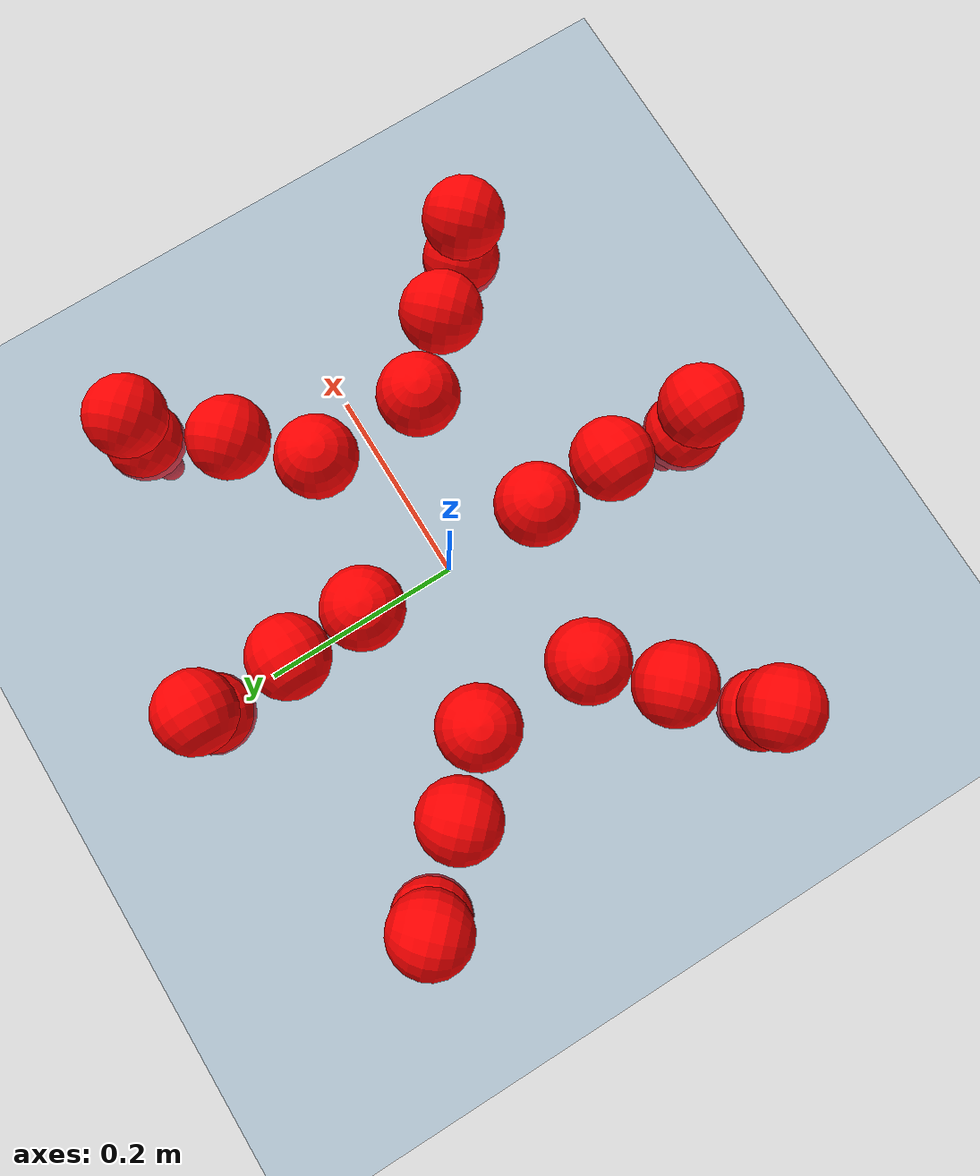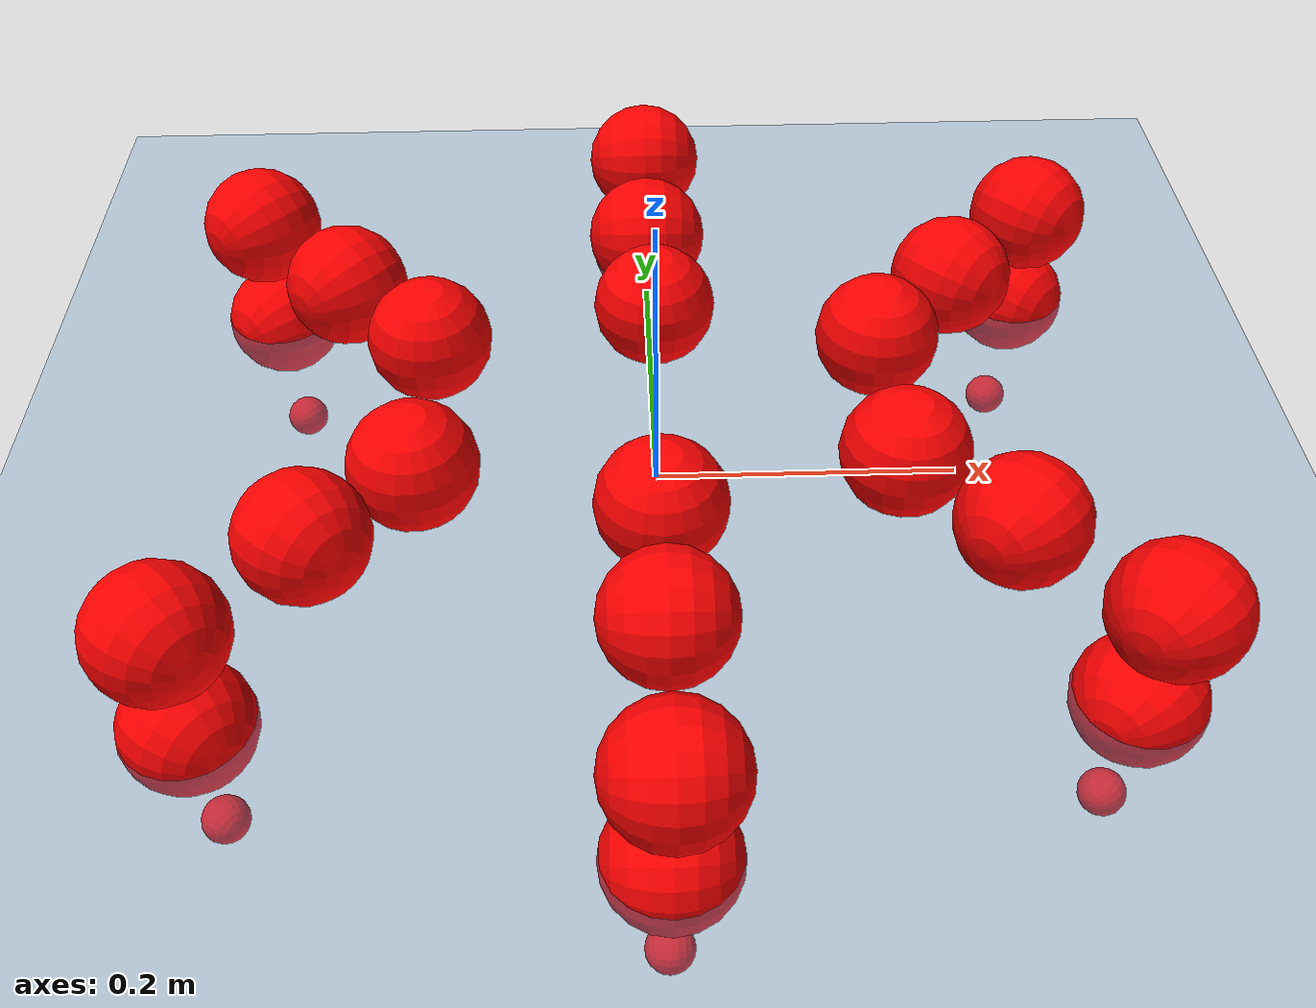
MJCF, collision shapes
<mujoco model="Golem">
  <compiler angle="radian" assetdir="assets" balanceinertia="true" inertiafromgeom="false"/>

  <option timestep="0.005" density="1.2" viscosity="2e-05"/>

  <size nkey="1"/>

  <visual>
    <quality shadowsize="8192"/>
    <map shadowclip="0.5"/>
  </visual>

  <default>
    <default class="/">
      <joint armature="0.01" damping="0.01" frictionloss="0.01"/>
      <geom contype="0" conaffinity="0" group="1" solref="-1000 -80"/>
      <site size="0.01 0.005 0.005" group="5"/>
      <general forcelimited="true" biastype="affine" gainprm="25" biasprm="0 -25 -0.5"/>
      <default class="visual">
        <geom type="mesh" group="2"/>
      </default>
      <default class="collision">
        <geom group="3"/>
      </default>
      <default class="foot">
        <geom size="0.01 0 0" condim="6" group="4" priority="1" solimp="0.015 1 0.01"/>
      </default>
      <default class="reward_collision_sphere">
        <geom group="5" rgba="1 0 0 1"/>
      </default>
    </default>
  </default>

  <asset>
    <texture type="skybox" colorspace="auto" name="//unnamed_texture_0" builtin="gradient" rgb1="0.95 0.95 0.95" rgb2="0.95 0.95 0.95" width="100" height="600"/>
    <texture type="2d" colorspace="auto" name="texplane" builtin="checker" rgb1="0.345 0.575 0.748" rgb2="0.345 0.575 0.748" markrgb="1 1 1" width="512" height="512"/>
    <material name="MatPlane" class="/" texture="texplane" texuniform="true" texrepeat="2 2" specular="0.9"/>
    <mesh name="body" class="/" file="body.stl" scale="0.001 0.001 0.001"/>
    <mesh name="coxa" class="/" file="coxa.stl" scale="0.001 0.001 0.001"/>
    <mesh name="femur" class="/" file="femur.stl" scale="0.001 0.001 0.001"/>
    <mesh name="tibia" class="/" file="tibia.stl" scale="0.001 0.001 0.001"/>
    <mesh name="tarsus" class="/" file="tarsus.stl" scale="0.001 0.001 0.001"/>
  </asset>

  <worldbody>
    <geom name="floor" class="/" size="100 100 0.125" type="plane" group="0" material="MatPlane"/>
    <light name="toplight_shadow" class="/" pos="0 0 5" dir="0.0990148 0.0990148 -0.990148" type="directional" ambient="0.04 0.04 0.04" diffuse="0.55 0.55 0.55" specular="0.12 0.12 0.12"/>
    <light name="toplight_fill" class="/" pos="0 0 5" dir="0.0990148 0.0990148 -0.990148" type="directional" castshadow="false" ambient="0.04 0.04 0.04" diffuse="0.3 0.3 0.3" specular="0.08 0.08 0.08"/>
    <body name="trunk" pos="0.000140199 -0.000200259 -0.00273547" quat="0.999999 -0.000490584 -0.000396424 0.000862556">
      <inertial pos="0.00297495 -0.00290589 -0.000272517" quat="0.999949 0.000519102 -0.00143025 -0.00999028" mass="3.65767" diaginertia="0.00694936 0.00622035 0.0230806"/>
      <joint name="//unnamed_joint_0" type="free"/>
      <geom name="//unnamed_geom_1" class="/" pos="0 0 0.075666" quat="1 0 0 0" type="mesh" rgba="0.9 0.9 0.9 1" mesh="body"/>
      <site name="imu" class="/" pos="0.114534 0.00986235 0.119808" size="0.0101366"/>
      <camera name="track" class="/" pos="0 -1.84443 0" quat="0.707107 0.707107 0 0" mode="trackcom"/>
      <camera name="ego_camera" class="/" pos="0.121742 0 0.118228" quat="-0.5 -0.5 0.5 0.5"/>
      <body name="coxa_RR" pos="-0.167575 -0.0771397 0.0770213" quat="0.382667 -3.69985e-07 8.11011e-06 -0.923886">
        <inertial pos="0.00235874 0.00197127 -0.00256827" quat="0.999914 0.00701243 0.0106727 -0.00298119" mass="0.208795" diaginertia="0.0069165 0.00666041 0.0225866"/>
        <joint name="coxa_joint_RR" class="/" pos="0 0 0" axis="-0.00628028 0.00114411 -0.99998" stiffness="0.00509853" range="-3.08723 3.10113" armature="0.0101759" damping="0" frictionloss="0.011322"/>
        <geom name="//unnamed_geom_2" class="/" type="mesh" rgba="0.2 0.2 0.2 1" mesh="coxa"/>
        <geom name="//unnamed_geom_3" class="reward_collision_sphere" size="0.0405463" pos="-0.0280944 0 0"/>
        <body name="femur_RR" pos="0.0529401 -0.00204156 -5.89726e-05" quat="0.499815 -0.499952 0.499848 0.500384">
          <inertial pos="8.36091e-05 0.000520498 0.00279689" quat="0.999904 0.0127895 0.00292253 0.00439701" mass="0.201607" diaginertia="0.00730471 0.00631314 0.0226801"/>
          <joint name="femur_joint_RR" class="/" pos="0 0 0" axis="-0.00123344 0.00198154 -0.999997" range="-3.09966 3.09846" armature="0.0110583" damping="0.0148734" frictionloss="0.010076"/>
          <geom name="//unnamed_geom_4" class="/" type="mesh" rgba="0.9 0.9 0.9 1" mesh="femur"/>
          <geom name="//unnamed_geom_5" class="reward_collision_sphere" size="0.0405463"/>
          <body name="tibia_RR" pos="-0.00253128 -0.0972216 0.00144388" quat="0.000189307 1 0.000224419 0.000149978">
            <inertial pos="-0.000187826 0.00110845 0.000345509" quat="1 0.000286252 -4.58143e-05 0.000434553" mass="0.203995" diaginertia="0.00706439 0.00650229 0.0226173"/>
            <joint name="tibia_joint_RR" class="/" pos="0 0 0" axis="-0.00412713 -0.00598012 0.999974" range="-3.11861 3.15277" armature="0.00857278" damping="0.0130846" frictionloss="0.0100779"/>
            <geom name="//unnamed_geom_6" class="/" type="mesh" rgba="0.2 0.2 0.2 1" mesh="tibia"/>
            <geom name="//unnamed_geom_7" class="reward_collision_sphere" size="0.0405463"/>
            <body name="tarsus_RR" pos="0.0817614 0.00232116 -0.000662077" quat="0.999999 0.000847645 0.001074 -0.000397717">
              <inertial pos="0.0592556 5.97389e-05 0.00262308" quat="0.502955 0.488855 0.507752 0.500244" mass="0.20471" diaginertia="0.0070856 0.00640648 0.0226273"/>
              <joint name="tarsus_joint_RR" class="/" pos="0 0 0" axis="-0.00330444 0.0137887 0.999899" range="-3.19617 3.15585" armature="0.00913931" damping="0.0171769" frictionloss="0.00997131"/>
              <geom name="//unnamed_geom_8" class="/" type="mesh" rgba="0.9 0.9 0.9 1" mesh="tarsus"/>
              <geom name="foot_1" class="foot" size="0.00941953" pos="0.104886 0 0" quat="0 -0.707107 0 0.707107"/>
              <geom name="//unnamed_geom_10" class="reward_collision_sphere" size="0.0405463"/>
              <geom name="//unnamed_geom_11" class="reward_collision_sphere" size="0.0152049" pos="0.100672 0 0"/>
              <site name="foot_1" class="foot" pos="0.104886 0 0" quat="0 -0.707107 0 0.707107" size="0.0101366"/>
            </body>
          </body>
        </body>
      </body>
      <body name="coxa_RM" pos="1.38178e-05 -0.123228 0.078357" quat="0.707246 0.000177289 0.000296617 -0.706968">
        <inertial pos="-0.000567982 0.000280997 -0.00182091" quat="0.999998 0.00066698 -0.00121117 0.00106052" mass="0.20168" diaginertia="0.00713302 0.00677159 0.0238516"/>
        <joint name="coxa_joint_RM" class="/" pos="0 0 0" axis="0.00054943 -0.001851 -0.999998" range="-3.1332 3.08185" armature="0.00934508" damping="0.0181183" frictionloss="0.0115101"/>
        <geom name="//unnamed_geom_12" class="/" type="mesh" rgba="0.2 0.2 0.2 1" mesh="coxa"/>
        <geom name="//unnamed_geom_13" class="reward_collision_sphere" size="0.0405463" pos="-0.0280944 0 0"/>
        <body name="femur_RM" pos="0.0558008 0.000392678 -0.00186677" quat="0.49988 -0.499843 0.500122 0.500155">
          <inertial pos="-0.000374782 0.00246802 -3.22817e-05" quat="1 -0.000627574 0.000525462 6.75893e-05" mass="0.217018" diaginertia="0.00708134 0.00678145 0.0224382"/>
          <joint name="femur_joint_RM" class="/" pos="0 0 0" axis="-0.00137078 0.000827378 -0.999999" range="-3.09777 3.19484" armature="0.0114601" damping="0.0210813" frictionloss="0.0109155"/>
          <geom name="//unnamed_geom_14" class="/" type="mesh" rgba="0.9 0.9 0.9 1" mesh="femur"/>
          <geom name="//unnamed_geom_15" class="reward_collision_sphere" size="0.0405463"/>
          <body name="tibia_RM" pos="6.80352e-05 -0.0994706 -0.000441382" quat="-0.000298543 1 -7.52989e-05 -0.000110041">
            <inertial pos="-0.00102025 0.000215169 0.00235454" quat="0.999995 -0.00020561 -0.00189279 0.00259309" mass="0.211025" diaginertia="0.00727446 0.00663851 0.0222664"/>
            <joint name="tibia_joint_RM" class="/" pos="0 0 0" axis="0.00370072 -0.00290862 0.999989" range="-3.08932 3.19207" armature="0.00966081" damping="0.0194144" frictionloss="0.0107143"/>
            <geom name="//unnamed_geom_16" class="/" type="mesh" rgba="0.2 0.2 0.2 1" mesh="tibia"/>
            <geom name="//unnamed_geom_17" class="reward_collision_sphere" size="0.0405463"/>
            <body name="tarsus_RM" pos="0.0827166 3.71221e-05 0.00138621" quat="0.999999 -5.62661e-05 -0.00109575 0.000711036">
              <inertial pos="0.0560044 -0.00166509 2.27512e-05" quat="0.501322 0.501413 0.499202 0.498054" mass="0.21767" diaginertia="0.00740431 0.00678279 0.0233045"/>
              <joint name="tarsus_joint_RM" class="/" pos="0 0 0" axis="-0.00328083 -0.0114669 0.999929" stiffness="0.000230862" range="-3.09306 3.12341" armature="0.00875727" damping="0.0133547" frictionloss="0.0106862"/>
              <geom name="//unnamed_geom_18" class="/" type="mesh" rgba="0.9 0.9 0.9 1" mesh="tarsus"/>
              <geom name="foot_2" class="foot" size="0.00907218" pos="0.104886 0 0" quat="0 -0.707107 0 0.707107"/>
              <geom name="//unnamed_geom_20" class="reward_collision_sphere" size="0.0405463"/>
              <geom name="//unnamed_geom_21" class="reward_collision_sphere" size="0.0152049" pos="0.100672 0 0"/>
              <site name="foot_2" class="foot" pos="0.104886 0 0" quat="0 -0.707107 0 0.707107" size="0.0101366"/>
            </body>
          </body>
        </body>
      </body>
      <body name="coxa_RF" pos="0.169014 -0.0766167 0.0774447" quat="0.923766 2.52485e-05 -0.000542773 -0.382956">
        <inertial pos="-0.000935416 -0.0010033 -0.00221418" quat="0.999903 -0.00897413 0.0086644 0.00612055" mass="0.206106" diaginertia="0.00713965 0.0066155 0.0230169"/>
        <joint name="coxa_joint_RF" class="/" pos="0 0 0" axis="-0.00436548 0.00277831 -0.999987" range="-3.15791 3.08316" armature="0.0100078" damping="0.00957691" frictionloss="0.0108679"/>
        <geom name="//unnamed_geom_22" class="/" type="mesh" rgba="0.2 0.2 0.2 1" mesh="coxa"/>
        <geom name="//unnamed_geom_23" class="reward_collision_sphere" size="0.0405463" pos="-0.0280944 0 0"/>
        <body name="femur_RF" pos="0.0563142 -0.00196522 0.00177218" quat="0.500625 -0.499081 0.49998 0.500313">
          <inertial pos="2.1877e-06 -0.000757289 -0.00125071" quat="0.9999 0.00084309 0.00786091 -0.0117153" mass="0.207211" diaginertia="0.00690534 0.00647455 0.022275"/>
          <joint name="femur_joint_RF" class="/" pos="0 0 0" axis="0.00185726 -0.011802 -0.999929" range="-3.08581 3.1493" armature="0.00970837" damping="0.00874214" frictionloss="0.00991545"/>
          <geom name="//unnamed_geom_24" class="/" type="mesh" rgba="0.9 0.9 0.9 1" mesh="femur"/>
          <geom name="//unnamed_geom_25" class="reward_collision_sphere" size="0.0405463"/>
          <body name="tibia_RF" pos="4.89895e-05 -0.0985946 0.00128337" quat="0.00068999 0.999999 0.000622355 0.000758542">
            <inertial pos="0.000210846 -0.00124496 -0.00216282" quat="0.999971 0.0039777 0.00177191 -0.00631365" mass="0.215218" diaginertia="0.00699989 0.00660457 0.0232726"/>
            <joint name="tibia_joint_RF" class="/" pos="0 0 0" axis="-0.00600597 -0.00139211 0.999981" stiffness="0.01807" range="-3.19533 3.12108" armature="0.00958472" damping="0.0323581" frictionloss="0.00871135"/>
            <geom name="//unnamed_geom_26" class="/" type="mesh" rgba="0.2 0.2 0.2 1" mesh="tibia"/>
            <geom name="//unnamed_geom_27" class="reward_collision_sphere" size="0.0405463"/>
            <body name="tarsus_RF" pos="0.0836467 -0.00302059 -0.000106084" quat="1 2.83347e-06 4.78826e-05 5.20182e-05">
              <inertial pos="0.0582346 0.000474267 0.000658398" quat="0.507177 0.494918 0.503803 0.493973" mass="0.198614" diaginertia="0.00671994 0.00628241 0.0223106"/>
              <joint name="tarsus_joint_RF" class="/" pos="0 0 0" axis="-0.0023404 0.000609768 0.999997" stiffness="0.00609706" range="-3.13832 3.12089" armature="0.0092883" damping="0.00641174" frictionloss="0.0115702"/>
              <geom name="//unnamed_geom_28" class="/" type="mesh" rgba="0.9 0.9 0.9 1" mesh="tarsus"/>
              <geom name="foot_3" class="foot" size="0.0109808" pos="0.104886 0 0" quat="0 -0.707107 0 0.707107"/>
              <geom name="//unnamed_geom_30" class="reward_collision_sphere" size="0.0405463"/>
              <geom name="//unnamed_geom_31" class="reward_collision_sphere" size="0.0152049" pos="0.100672 0 0"/>
              <site name="foot_3" class="foot" pos="0.104886 0 0" quat="0 -0.707107 0 0.707107" size="0.0101366"/>
            </body>
          </body>
        </body>
      </body>
      <body name="coxa_LR" pos="-0.165873 0.0791846 0.0782503" quat="0.382486 0.000890054 -0.000298121 0.923961">
        <inertial pos="-0.00265061 0.0019012 -0.00157923" quat="0.999994 0.00281525 -0.00220296 0.000107078" mass="0.212328" diaginertia="0.00707344 0.00648916 0.0232785"/>
        <joint name="coxa_joint_LR" class="/" pos="0 0 0" axis="-0.0115411 -0.00751958 -0.999905" stiffness="0.0165011" range="-3.19322 3.16674" armature="0.0099308" damping="0.0158543" frictionloss="0.0114216"/>
        <geom name="//unnamed_geom_32" class="/" type="mesh" rgba="0.2 0.2 0.2 1" mesh="coxa"/>
        <geom name="//unnamed_geom_33" class="reward_collision_sphere" size="0.0405463" pos="-0.0280944 0 0"/>
        <body name="femur_LR" pos="0.0555433 0.00197614 0.00101852" quat="0.499629 -0.499293 0.500382 0.500694">
          <inertial pos="-0.000772531 0.00247627 0.00199504" quat="0.99999 -0.0037377 -0.00148479 0.00190619" mass="0.198232" diaginertia="0.00730728 0.00641439 0.0219792"/>
          <joint name="femur_joint_LR" class="/" pos="0 0 0" axis="-0.00110116 -0.00106225 0.999999" range="-3.19521 3.18755" armature="0.0101171" damping="0.00999997" frictionloss="0.00979906"/>
          <geom name="//unnamed_geom_34" class="/" type="mesh" rgba="0.9 0.9 0.9 1" mesh="femur"/>
          <geom name="//unnamed_geom_35" class="reward_collision_sphere" size="0.0405463"/>
          <body name="tibia_LR" pos="0.000886026 -0.0999975 -0.00287755" quat="-0.000798141 0.999999 -0.000499178 0.0006373">
            <inertial pos="-0.00275243 0.00225968 0.00237317" quat="0.999914 0.0111883 -0.00418533 -0.0053286" mass="0.21501" diaginertia="0.00735722 0.00698725 0.0226567"/>
            <joint name="tibia_joint_LR" class="/" pos="0 0 0" axis="-0.00611496 0.0036511 -0.999975" range="-3.12268 3.1888" armature="0.00893313" damping="0" frictionloss="0.0102254"/>
            <geom name="//unnamed_geom_36" class="/" type="mesh" rgba="0.2 0.2 0.2 1" mesh="tibia"/>
            <geom name="//unnamed_geom_37" class="reward_collision_sphere" size="0.0405463"/>
            <body name="tarsus_LR" pos="0.0840825 -0.00158005 0.000122397" quat="1 -6.56181e-06 1.44246e-05 0.000126403">
              <inertial pos="0.055789 -0.00160802 0.000593734" quat="0.499566 0.499921 0.501221 0.499289" mass="0.199531" diaginertia="0.00701289 0.00648885 0.0232815"/>
              <joint name="tarsus_joint_LR" class="/" pos="0 0 0" axis="0.00046612 -0.00199384 -0.999998" stiffness="0.00895925" range="-3.1589 3.1955" armature="0.0100062" damping="0.00663614" frictionloss="0.00871211"/>
              <geom name="//unnamed_geom_38" class="/" type="mesh" rgba="0.9 0.9 0.9 1" mesh="tarsus"/>
              <geom name="foot_4" class="foot" size="0.0112676" pos="0.104886 0 0" quat="0.707107 0 -0.707107 0"/>
              <geom name="//unnamed_geom_40" class="reward_collision_sphere" size="0.0405463"/>
              <geom name="//unnamed_geom_41" class="reward_collision_sphere" size="0.0152049" pos="0.100672 0 0"/>
              <site name="foot_4" class="foot" pos="0.104886 0 0" quat="0.707107 0 -0.707107 0" size="0.0101366"/>
            </body>
          </body>
        </body>
      </body>
      <body name="coxa_LM" pos="0.00215363 0.121025 0.0753131" quat="0.707384 0.000125906 0.000583353 0.70683">
        <inertial pos="-0.00027038 -0.000694971 -0.000988547" quat="0.999997 -0.00204766 -0.00115327 0.000124952" mass="0.205883" diaginertia="0.00759863 0.00681347 0.0234173"/>
        <joint name="coxa_joint_LM" class="/" pos="0 0 0" axis="0.013806 -0.00388989 -0.999897" range="-3.14889 3.15997" armature="0.0112782" damping="0.0075718" frictionloss="0.0101731"/>
        <geom name="//unnamed_geom_42" class="/" type="mesh" rgba="0.2 0.2 0.2 1" mesh="coxa"/>
        <geom name="//unnamed_geom_43" class="reward_collision_sphere" size="0.0405463" pos="-0.0280944 0 0"/>
        <body name="femur_LM" pos="0.0525157 0.00273323 -0.000825715" quat="0.500374 -0.49945 0.500009 0.500167">
          <inertial pos="-0.00240407 0.000780427 -0.000164143" quat="0.999927 0.00295914 0.00273716 0.0114296" mass="0.202074" diaginertia="0.00695418 0.00641849 0.0220555"/>
          <joint name="femur_joint_LM" class="/" pos="0 0 0" axis="-0.00787021 -0.00915299 0.999927" stiffness="0.00809558" range="-3.11364 3.13112" armature="0.00884212" damping="0.00459497" frictionloss="0.0091433"/>
          <geom name="//unnamed_geom_44" class="/" type="mesh" rgba="0.9 0.9 0.9 1" mesh="femur"/>
          <geom name="//unnamed_geom_45" class="reward_collision_sphere" size="0.0405463"/>
          <body name="tibia_LM" pos="-0.000415961 -0.0972032 -0.000733144" quat="-0.000799359 0.999999 -3.31608e-05 -0.00125523">
            <inertial pos="0.00284432 -0.000332808 -0.000306411" quat="0.999999 -0.000159582 -0.000407215 -0.00128989" mass="0.216041" diaginertia="0.00719965 0.00664969 0.0230027"/>
            <joint name="tibia_joint_LM" class="/" pos="0 0 0" axis="0.0062047 -0.00832737 -0.999946" stiffness="0.00279351" range="-3.09824 3.08204" armature="0.00984292" damping="0.0113654" frictionloss="0.0112218"/>
            <geom name="//unnamed_geom_46" class="/" type="mesh" rgba="0.2 0.2 0.2 1" mesh="tibia"/>
            <geom name="//unnamed_geom_47" class="reward_collision_sphere" size="0.0405463"/>
            <body name="tarsus_LM" pos="0.0813184 -0.0018761 3.20964e-05" quat="1 2.59114e-06 -1.1132e-05 -3.32745e-05">
              <inertial pos="0.0533377 -0.00165302 -0.000246651" quat="0.49365 0.501109 0.494063 0.510981" mass="0.210229" diaginertia="0.00707668 0.00670487 0.0224695"/>
              <joint name="tarsus_joint_LM" class="/" pos="0 0 0" axis="-0.00200014 0.0146485 -0.999891" stiffness="0.0046822" range="-3.13284 3.13622" armature="0.00974611" damping="0.0102872" frictionloss="0.010376"/>
              <geom name="//unnamed_geom_48" class="/" type="mesh" rgba="0.9 0.9 0.9 1" mesh="tarsus"/>
              <geom name="foot_5" class="foot" size="0.0113016" pos="0.104886 0 0" quat="0.707107 0 -0.707107 0"/>
              <geom name="//unnamed_geom_50" class="reward_collision_sphere" size="0.0405463"/>
              <geom name="//unnamed_geom_51" class="reward_collision_sphere" size="0.0152049" pos="0.100672 0 0"/>
              <site name="foot_5" class="foot" pos="0.104886 0 0" quat="0.707107 0 -0.707107 0" size="0.0101366"/>
            </body>
          </body>
        </body>
      </body>
      <body name="coxa_LF" pos="0.167888 0.0760785 0.0747753" quat="0.923657 0.000613097 0.000260395 0.38322">
        <inertial pos="-0.000986761 6.25778e-05 -0.00253803" quat="0.99996 0.00880466 0.000194411 -0.00185348" mass="0.204057" diaginertia="0.00699016 0.00647317 0.0231157"/>
        <joint name="coxa_joint_LF" class="/" pos="0 0 0" axis="-0.00311604 -0.00116131 -0.999994" range="-3.19624 3.13753" armature="0.0113879" damping="0.0192132" frictionloss="0.00892524"/>
        <geom name="//unnamed_geom_52" class="/" type="mesh" rgba="0.2 0.2 0.2 1" mesh="coxa"/>
        <geom name="//unnamed_geom_53" class="reward_collision_sphere" size="0.0405463" pos="-0.0280944 0 0"/>
        <body name="femur_LF" pos="0.0574084 0.00120689 0.000780501" quat="0.4997 -0.499964 0.499402 0.500932">
          <inertial pos="0.000391979 -0.00300866 0.00176229" quat="0.999999 -0.00141397 0.000585958 -5.03815e-05" mass="0.208859" diaginertia="0.00698269 0.00652074 0.0226183"/>
          <joint name="femur_joint_LF" class="/" pos="0 0 0" axis="0.00437838 -0.00648106 0.999969" range="-3.19494 3.18467" armature="0.0104684" damping="0" frictionloss="0.0104683"/>
          <geom name="//unnamed_geom_54" class="/" type="mesh" rgba="0.9 0.9 0.9 1" mesh="femur"/>
          <geom name="//unnamed_geom_55" class="reward_collision_sphere" size="0.0405463"/>
          <body name="tibia_LF" pos="0.000420658 -0.100342 0.0018464" quat="0.000282141 0.999999 0.00110532 0.000833863">
            <inertial pos="0.00269593 0.00154951 -0.00279688" quat="0.999989 -0.00147672 0.00227405 0.00392723" mass="0.212087" diaginertia="0.00685325 0.00664113 0.0219307"/>
            <joint name="tibia_joint_LF" class="/" pos="0 0 0" axis="0.00959667 0.0074183 -0.999926" stiffness="0.00968985" range="-3.1597 3.09417" armature="0.00892737" damping="0.0144089" frictionloss="0.0109544"/>
            <geom name="//unnamed_geom_56" class="/" type="mesh" rgba="0.2 0.2 0.2 1" mesh="tibia"/>
            <geom name="//unnamed_geom_57" class="reward_collision_sphere" size="0.0405463"/>
            <body name="tarsus_LF" pos="0.0798077 0.00200556 -0.0023629" quat="1 -6.21195e-06 2.53191e-05 6.75452e-05">
              <inertial pos="0.0566937 0.0019398 -0.00158162" quat="0.499805 0.500934 0.499954 0.499306" mass="0.200516" diaginertia="0.0070763 0.00659734 0.0231397"/>
              <joint name="tarsus_joint_LF" class="/" pos="0 0 0" axis="-0.000416812 0.00351459 -0.999994" stiffness="0.028213" range="-3.08489 3.08818" armature="0.0101927" damping="0.0247468" frictionloss="0.0087559"/>
              <geom name="//unnamed_geom_58" class="/" type="mesh" rgba="0.9 0.9 0.9 1" mesh="tarsus"/>
              <geom name="foot_6" class="foot" size="0.010685" pos="0.104886 0 0" quat="0.707107 0 -0.707107 0"/>
              <geom name="//unnamed_geom_60" class="reward_collision_sphere" size="0.0405463"/>
              <geom name="//unnamed_geom_61" class="reward_collision_sphere" size="0.0152049" pos="0.100672 0 0"/>
              <site name="foot_6" class="foot" pos="0.104886 0 0" quat="0.707107 0 -0.707107 0" size="0.0101366"/>
            </body>
          </body>
        </body>
      </body>
    </body>
  </worldbody>

  <contact>
    <pair class="/" geom1="floor" geom2="foot_1" name="//unnamed_contact_0"/>
    <pair class="/" geom1="floor" geom2="foot_2" name="//unnamed_contact_1"/>
    <pair class="/" geom1="floor" geom2="foot_3" name="//unnamed_contact_2"/>
    <pair class="/" geom1="floor" geom2="foot_4" name="//unnamed_contact_3"/>
    <pair class="/" geom1="floor" geom2="foot_5" name="//unnamed_contact_4"/>
    <pair class="/" geom1="floor" geom2="foot_6" name="//unnamed_contact_5"/>
  </contact>

  <actuator>
    <general name="coxa_joint_RR" class="/" joint="coxa_joint_RR" forcerange="-7.42013 7.42013" gainprm="24.0567" biasprm="0 -24.0567 -0.555818"/>
    <general name="femur_joint_RR" class="/" joint="femur_joint_RR" forcerange="-7.83462 7.83462" gainprm="24.0567" biasprm="0 -24.0567 -0.555818"/>
    <general name="tibia_joint_RR" class="/" joint="tibia_joint_RR" forcerange="-7.28413 7.28413" gainprm="24.0567" biasprm="0 -24.0567 -0.555818"/>
    <general name="tarsus_joint_RR" class="/" joint="tarsus_joint_RR" forcerange="-7.99485 7.99485" gainprm="24.0567" biasprm="0 -24.0567 -0.555818"/>
    <general name="coxa_joint_RM" class="/" joint="coxa_joint_RM" forcerange="-6.71917 6.71917" gainprm="24.0567" biasprm="0 -24.0567 -0.555818"/>
    <general name="femur_joint_RM" class="/" joint="femur_joint_RM" forcerange="-7.98051 7.98051" gainprm="24.0567" biasprm="0 -24.0567 -0.555818"/>
    <general name="tibia_joint_RM" class="/" joint="tibia_joint_RM" forcerange="-7.89582 7.89582" gainprm="24.0567" biasprm="0 -24.0567 -0.555818"/>
    <general name="tarsus_joint_RM" class="/" joint="tarsus_joint_RM" forcerange="-8.1218 8.1218" gainprm="24.0567" biasprm="0 -24.0567 -0.555818"/>
    <general name="coxa_joint_RF" class="/" joint="coxa_joint_RF" forcerange="-6.80154 6.80154" gainprm="24.0567" biasprm="0 -24.0567 -0.555818"/>
    <general name="femur_joint_RF" class="/" joint="femur_joint_RF" forcerange="-7.35235 7.35235" gainprm="24.0567" biasprm="0 -24.0567 -0.555818"/>
    <general name="tibia_joint_RF" class="/" joint="tibia_joint_RF" forcerange="-8.01986 8.01986" gainprm="24.0567" biasprm="0 -24.0567 -0.555818"/>
    <general name="tarsus_joint_RF" class="/" joint="tarsus_joint_RF" forcerange="-7.44451 7.44451" gainprm="24.0567" biasprm="0 -24.0567 -0.555818"/>
    <general name="coxa_joint_LR" class="/" joint="coxa_joint_LR" forcerange="-7.43906 7.43906" gainprm="24.0567" biasprm="0 -24.0567 -0.555818"/>
    <general name="femur_joint_LR" class="/" joint="femur_joint_LR" forcerange="-7.48482 7.48482" gainprm="24.0567" biasprm="0 -24.0567 -0.555818"/>
    <general name="tibia_joint_LR" class="/" joint="tibia_joint_LR" forcerange="-7.60139 7.60139" gainprm="24.0567" biasprm="0 -24.0567 -0.555818"/>
    <general name="tarsus_joint_LR" class="/" joint="tarsus_joint_LR" forcerange="-7.11887 7.11887" gainprm="24.0567" biasprm="0 -24.0567 -0.555818"/>
    <general name="coxa_joint_LM" class="/" joint="coxa_joint_LM" forcerange="-7.1562 7.1562" gainprm="24.0567" biasprm="0 -24.0567 -0.555818"/>
    <general name="femur_joint_LM" class="/" joint="femur_joint_LM" forcerange="-7.25103 7.25103" gainprm="24.0567" biasprm="0 -24.0567 -0.555818"/>
    <general name="tibia_joint_LM" class="/" joint="tibia_joint_LM" forcerange="-7.40235 7.40235" gainprm="24.0567" biasprm="0 -24.0567 -0.555818"/>
    <general name="tarsus_joint_LM" class="/" joint="tarsus_joint_LM" forcerange="-8.09845 8.09845" gainprm="24.0567" biasprm="0 -24.0567 -0.555818"/>
    <general name="coxa_joint_LF" class="/" joint="coxa_joint_LF" forcerange="-6.61695 6.61695" gainprm="24.0567" biasprm="0 -24.0567 -0.555818"/>
    <general name="femur_joint_LF" class="/" joint="femur_joint_LF" forcerange="-7.42342 7.42342" gainprm="24.0567" biasprm="0 -24.0567 -0.555818"/>
    <general name="tibia_joint_LF" class="/" joint="tibia_joint_LF" forcerange="-7.4969 7.4969" gainprm="24.0567" biasprm="0 -24.0567 -0.555818"/>
    <general name="tarsus_joint_LF" class="/" joint="tarsus_joint_LF" forcerange="-7.53529 7.53529" gainprm="24.0567" biasprm="0 -24.0567 -0.555818"/>
  </actuator>

  <sensor>
    <gyro site="imu" name="imu_angular_velocity"/>
    <velocimeter site="imu" name="imu_linear_velocity"/>
    <framelinvel objtype="site" objname="foot_1" name="foot_1_global_linear_velocity"/>
    <framelinvel objtype="site" objname="foot_2" name="foot_2_global_linear_velocity"/>
    <framelinvel objtype="site" objname="foot_3" name="foot_3_global_linear_velocity"/>
    <framelinvel objtype="site" objname="foot_4" name="foot_4_global_linear_velocity"/>
    <framelinvel objtype="site" objname="foot_5" name="foot_5_global_linear_velocity"/>
    <framelinvel objtype="site" objname="foot_6" name="foot_6_global_linear_velocity"/>
  </sensor>

  <keyframe>
    <key name="home" qpos="0 0 0.1457 1 0 0 0 0 0 0 0 0 0 0 0 0 0 0 0 0 0 0 0 0 0 0 0 0 0 0 0"/>
  </keyframe>
</mujoco>
